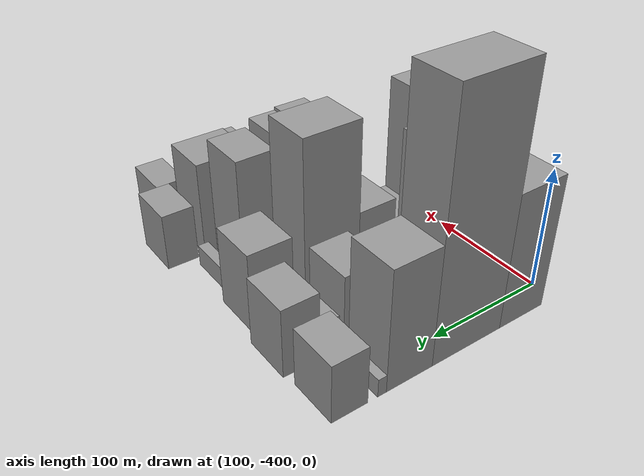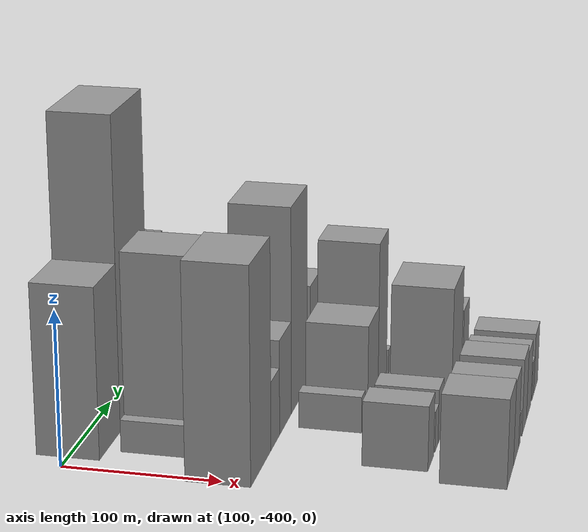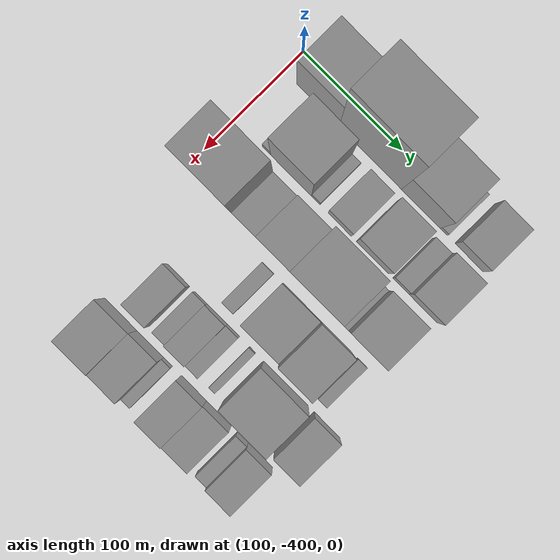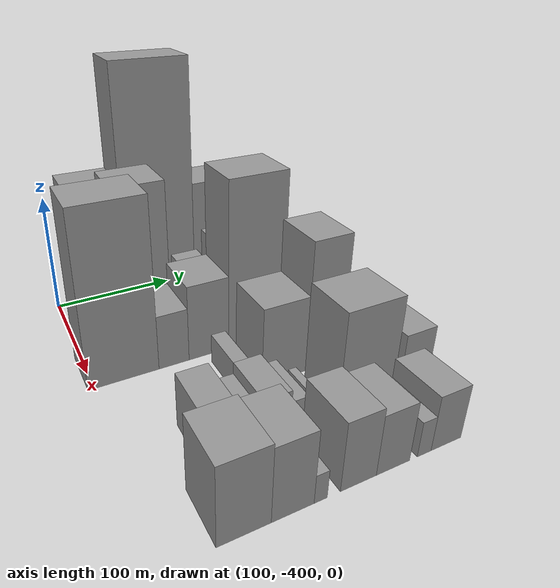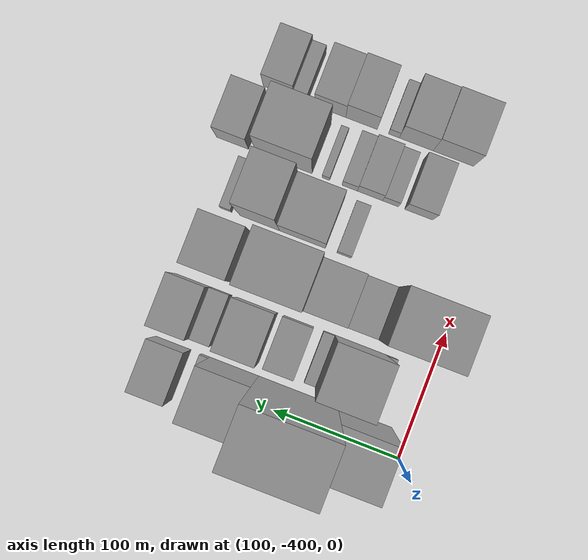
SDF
<sdf version="1.6">
 <world name="default">
  <model name="building_13">
   <static>1</static>
   <pose>100.0000 -365.4669 0 0.000000 0.000000 0.000000</pose>
   <link name="link">
    <pose>0 0 55.50 0 0 0</pose>
    <collision name="collision"><geometry><box><size>40.0000 43.0348 111.0000</size></box></geometry></collision>
    <visual name="visual">
     <cast_shadows>0</cast_shadows>
     <geometry><box><size>40.0000 43.0348 111.0000</size></box></geometry>
     <material>
      <script>
       <uri>model://grey_wall/materials/scripts</uri>
       <uri>model://grey_wall/materials/textures</uri>
       <name>vrc/grey_wall</name>
      </script>
     </material>
    </visual>
   </link>
  </model>
  <model name="building_14">
   <static>1</static>
   <pose>100.0000 -312.3354 0 0.000000 0.000000 0.000000</pose>
   <link name="link">
    <pose>0 0 102.00 0 0 0</pose>
    <collision name="collision"><geometry><box><size>40.0000 63.2282 204.0000</size></box></geometry></collision>
    <visual name="visual">
     <cast_shadows>0</cast_shadows>
     <geometry><box><size>40.0000 63.2282 204.0000</size></box></geometry>
     <material>
      <script>
       <uri>model://grey_wall/materials/scripts</uri>
       <uri>model://grey_wall/materials/textures</uri>
       <name>vrc/grey_wall</name>
      </script>
     </material>
    </visual>
   </link>
  </model>
  <model name="building_15">
   <static>1</static>
   <pose>100.0000 -261.1318 0 0.000000 0.000000 0.000000</pose>
   <link name="link">
    <pose>0 0 49.50 0 0 0</pose>
    <collision name="collision"><geometry><box><size>40.0000 39.1790 99.0000</size></box></geometry></collision>
    <visual name="visual">
     <cast_shadows>0</cast_shadows>
     <geometry><box><size>40.0000 39.1790 99.0000</size></box></geometry>
     <material>
      <script>
       <uri>model://grey_wall/materials/scripts</uri>
       <uri>model://grey_wall/materials/textures</uri>
       <name>vrc/grey_wall</name>
      </script>
     </material>
    </visual>
   </link>
  </model>
  <model name="building_16">
   <static>1</static>
   <pose>100.0000 -238.0258 0 0.000000 0.000000 0.000000</pose>
   <link name="link">
    <pose>0 0 7.50 0 0 0</pose>
    <collision name="collision"><geometry><box><size>40.0000 7.0330 15.0000</size></box></geometry></collision>
    <visual name="visual">
     <cast_shadows>0</cast_shadows>
     <geometry><box><size>40.0000 7.0330 15.0000</size></box></geometry>
     <material>
      <script>
       <uri>model://grey_wall/materials/scripts</uri>
       <uri>model://grey_wall/materials/textures</uri>
       <name>vrc/grey_wall</name>
      </script>
     </material>
    </visual>
   </link>
  </model>
  <model name="building_17">
   <static>1</static>
   <pose>100.0000 -212.2948 0 0.000000 0.000000 0.000000</pose>
   <link name="link">
    <pose>0 0 24.00 0 0 0</pose>
    <collision name="collision"><geometry><box><size>40.0000 28.4289 48.0000</size></box></geometry></collision>
    <visual name="visual">
     <cast_shadows>0</cast_shadows>
     <geometry><box><size>40.0000 28.4289 48.0000</size></box></geometry>
     <material>
      <script>
       <uri>model://grey_wall/materials/scripts</uri>
       <uri>model://grey_wall/materials/textures</uri>
       <name>vrc/grey_wall</name>
      </script>
     </material>
    </visual>
   </link>
  </model>
  <model name="building_61">
   <static>1</static>
   <pose>149.0000 -367.9124 0 0.000000 0.000000 0.000000</pose>
   <link name="link">
    <pose>0 0 10.50 0 0 0</pose>
    <collision name="collision"><geometry><box><size>40.0000 8.4608 21.0000</size></box></geometry></collision>
    <visual name="visual">
     <cast_shadows>0</cast_shadows>
     <geometry><box><size>40.0000 8.4608 21.0000</size></box></geometry>
     <material>
      <script>
       <uri>model://grey_wall/materials/scripts</uri>
       <uri>model://grey_wall/materials/textures</uri>
       <name>vrc/grey_wall</name>
      </script>
     </material>
    </visual>
   </link>
  </model>
  <model name="building_62">
   <static>1</static>
   <pose>149.0000 -343.1044 0 0.000000 0.000000 0.000000</pose>
   <link name="link">
    <pose>0 0 63.00 0 0 0</pose>
    <collision name="collision"><geometry><box><size>40.0000 41.1552 126.0000</size></box></geometry></collision>
    <visual name="visual">
     <cast_shadows>0</cast_shadows>
     <geometry><box><size>40.0000 41.1552 126.0000</size></box></geometry>
     <material>
      <script>
       <uri>model://grey_wall/materials/scripts</uri>
       <uri>model://grey_wall/materials/textures</uri>
       <name>vrc/grey_wall</name>
      </script>
     </material>
    </visual>
   </link>
  </model>
  <model name="building_63">
   <static>1</static>
   <pose>149.0000 -318.1681 0 0.000000 0.000000 0.000000</pose>
   <link name="link">
    <pose>0 0 10.50 0 0 0</pose>
    <collision name="collision"><geometry><box><size>40.0000 8.7174 21.0000</size></box></geometry></collision>
    <visual name="visual">
     <cast_shadows>0</cast_shadows>
     <geometry><box><size>40.0000 8.7174 21.0000</size></box></geometry>
     <material>
      <script>
       <uri>model://grey_wall/materials/scripts</uri>
       <uri>model://grey_wall/materials/textures</uri>
       <name>vrc/grey_wall</name>
      </script>
     </material>
    </visual>
   </link>
  </model>
  <model name="building_64">
   <static>1</static>
   <pose>149.0000 -293.9728 0 0.000000 0.000000 0.000000</pose>
   <link name="link">
    <pose>0 0 21.00 0 0 0</pose>
    <collision name="collision"><geometry><box><size>40.0000 23.6732 42.0000</size></box></geometry></collision>
    <visual name="visual">
     <cast_shadows>0</cast_shadows>
     <geometry><box><size>40.0000 23.6732 42.0000</size></box></geometry>
     <material>
      <script>
       <uri>model://grey_wall/materials/scripts</uri>
       <uri>model://grey_wall/materials/textures</uri>
       <name>vrc/grey_wall</name>
      </script>
     </material>
    </visual>
   </link>
  </model>
  <model name="building_65">
   <static>1</static>
   <pose>149.0000 -260.7673 0 0.000000 0.000000 0.000000</pose>
   <link name="link">
    <pose>0 0 30.00 0 0 0</pose>
    <collision name="collision"><geometry><box><size>40.0000 32.7379 60.0000</size></box></geometry></collision>
    <visual name="visual">
     <cast_shadows>0</cast_shadows>
     <geometry><box><size>40.0000 32.7379 60.0000</size></box></geometry>
     <material>
      <script>
       <uri>model://grey_wall/materials/scripts</uri>
       <uri>model://grey_wall/materials/textures</uri>
       <name>vrc/grey_wall</name>
      </script>
     </material>
    </visual>
   </link>
  </model>
  <model name="building_66">
   <static>1</static>
   <pose>149.0000 -232.5205 0 0.000000 0.000000 0.000000</pose>
   <link name="link">
    <pose>0 0 15.00 0 0 0</pose>
    <collision name="collision"><geometry><box><size>40.0000 15.7556 30.0000</size></box></geometry></collision>
    <visual name="visual">
     <cast_shadows>0</cast_shadows>
     <geometry><box><size>40.0000 15.7556 30.0000</size></box></geometry>
     <material>
      <script>
       <uri>model://grey_wall/materials/scripts</uri>
       <uri>model://grey_wall/materials/textures</uri>
       <name>vrc/grey_wall</name>
      </script>
     </material>
    </visual>
   </link>
  </model>
  <model name="building_67">
   <static>1</static>
   <pose>149.0000 -209.9047 0 0.000000 0.000000 0.000000</pose>
   <link name="link">
    <pose>0 0 28.50 0 0 0</pose>
    <collision name="collision"><geometry><box><size>40.0000 29.4762 57.0000</size></box></geometry></collision>
    <visual name="visual">
     <cast_shadows>0</cast_shadows>
     <geometry><box><size>40.0000 29.4762 57.0000</size></box></geometry>
     <material>
      <script>
       <uri>model://grey_wall/materials/scripts</uri>
       <uri>model://grey_wall/materials/textures</uri>
       <name>vrc/grey_wall</name>
      </script>
     </material>
    </visual>
   </link>
  </model>
  <model name="building_114">
   <static>1</static>
   <pose>198.0000 -377.8753 0 0.000000 0.000000 0.000000</pose>
   <link name="link">
    <pose>0 0 69.00 0 0 0</pose>
    <collision name="collision"><geometry><box><size>40.0000 52.5424 138.0000</size></box></geometry></collision>
    <visual name="visual">
     <cast_shadows>0</cast_shadows>
     <geometry><box><size>40.0000 52.5424 138.0000</size></box></geometry>
     <material>
      <script>
       <uri>model://grey_wall/materials/scripts</uri>
       <uri>model://grey_wall/materials/textures</uri>
       <name>vrc/grey_wall</name>
      </script>
     </material>
    </visual>
   </link>
  </model>
  <model name="building_115">
   <static>1</static>
   <pose>198.0000 -339.6867 0 0.000000 0.000000 0.000000</pose>
   <link name="link">
    <pose>0 0 22.50 0 0 0</pose>
    <collision name="collision"><geometry><box><size>40.0000 23.8348 45.0000</size></box></geometry></collision>
    <visual name="visual">
     <cast_shadows>0</cast_shadows>
     <geometry><box><size>40.0000 23.8348 45.0000</size></box></geometry>
     <material>
      <script>
       <uri>model://grey_wall/materials/scripts</uri>
       <uri>model://grey_wall/materials/textures</uri>
       <name>vrc/grey_wall</name>
      </script>
     </material>
    </visual>
   </link>
  </model>
  <model name="building_116">
   <static>1</static>
   <pose>198.0000 -311.1882 0 0.000000 0.000000 0.000000</pose>
   <link name="link">
    <pose>0 0 31.50 0 0 0</pose>
    <collision name="collision"><geometry><box><size>40.0000 33.1622 63.0000</size></box></geometry></collision>
    <visual name="visual">
     <cast_shadows>0</cast_shadows>
     <geometry><box><size>40.0000 33.1622 63.0000</size></box></geometry>
     <material>
      <script>
       <uri>model://grey_wall/materials/scripts</uri>
       <uri>model://grey_wall/materials/textures</uri>
       <name>vrc/grey_wall</name>
      </script>
     </material>
    </visual>
   </link>
  </model>
  <model name="building_117">
   <static>1</static>
   <pose>198.0000 -270.6538 0 0.000000 0.000000 0.000000</pose>
   <link name="link">
    <pose>0 0 69.00 0 0 0</pose>
    <collision name="collision"><geometry><box><size>40.0000 47.9067 138.0000</size></box></geometry></collision>
    <visual name="visual">
     <cast_shadows>0</cast_shadows>
     <geometry><box><size>40.0000 47.9067 138.0000</size></box></geometry>
     <material>
      <script>
       <uri>model://grey_wall/materials/scripts</uri>
       <uri>model://grey_wall/materials/textures</uri>
       <name>vrc/grey_wall</name>
      </script>
     </material>
    </visual>
   </link>
  </model>
  <model name="building_118">
   <static>1</static>
   <pose>198.0000 -241.7246 0 0.000000 0.000000 0.000000</pose>
   <link name="link">
    <pose>0 0 10.50 0 0 0</pose>
    <collision name="collision"><geometry><box><size>40.0000 9.9516 21.0000</size></box></geometry></collision>
    <visual name="visual">
     <cast_shadows>0</cast_shadows>
     <geometry><box><size>40.0000 9.9516 21.0000</size></box></geometry>
     <material>
      <script>
       <uri>model://grey_wall/materials/scripts</uri>
       <uri>model://grey_wall/materials/textures</uri>
       <name>vrc/grey_wall</name>
      </script>
     </material>
    </visual>
   </link>
  </model>
  <model name="building_119">
   <static>1</static>
   <pose>198.0000 -219.0642 0 0.000000 0.000000 0.000000</pose>
   <link name="link">
    <pose>0 0 33.00 0 0 0</pose>
    <collision name="collision"><geometry><box><size>40.0000 35.3692 66.0000</size></box></geometry></collision>
    <visual name="visual">
     <cast_shadows>0</cast_shadows>
     <geometry><box><size>40.0000 35.3692 66.0000</size></box></geometry>
     <material>
      <script>
       <uri>model://grey_wall/materials/scripts</uri>
       <uri>model://grey_wall/materials/textures</uri>
       <name>vrc/grey_wall</name>
      </script>
     </material>
    </visual>
   </link>
  </model>
  <model name="building_163">
   <static>1</static>
   <pose>247.0000 -307.6725 0 0.000000 0.000000 0.000000</pose>
   <link name="link">
    <pose>0 0 12.00 0 0 0</pose>
    <collision name="collision"><geometry><box><size>40.0000 11.4859 24.0000</size></box></geometry></collision>
    <visual name="visual">
     <cast_shadows>0</cast_shadows>
     <geometry><box><size>40.0000 11.4859 24.0000</size></box></geometry>
     <material>
      <script>
       <uri>model://grey_wall/materials/scripts</uri>
       <uri>model://grey_wall/materials/textures</uri>
       <name>vrc/grey_wall</name>
      </script>
     </material>
    </visual>
   </link>
  </model>
  <model name="building_164">
   <static>1</static>
   <pose>247.0000 -274.5075 0 0.000000 0.000000 0.000000</pose>
   <link name="link">
    <pose>0 0 31.50 0 0 0</pose>
    <collision name="collision"><geometry><box><size>40.0000 36.8439 63.0000</size></box></geometry></collision>
    <visual name="visual">
     <cast_shadows>0</cast_shadows>
     <geometry><box><size>40.0000 36.8439 63.0000</size></box></geometry>
     <material>
      <script>
       <uri>model://grey_wall/materials/scripts</uri>
       <uri>model://grey_wall/materials/textures</uri>
       <name>vrc/grey_wall</name>
      </script>
     </material>
    </visual>
   </link>
  </model>
  <model name="building_165">
   <static>1</static>
   <pose>247.0000 -240.2928 0 0.000000 0.000000 0.000000</pose>
   <link name="link">
    <pose>0 0 52.50 0 0 0</pose>
    <collision name="collision"><geometry><box><size>40.0000 31.5854 105.0000</size></box></geometry></collision>
    <visual name="visual">
     <cast_shadows>0</cast_shadows>
     <geometry><box><size>40.0000 31.5854 105.0000</size></box></geometry>
     <material>
      <script>
       <uri>model://grey_wall/materials/scripts</uri>
       <uri>model://grey_wall/materials/textures</uri>
       <name>vrc/grey_wall</name>
      </script>
     </material>
    </visual>
   </link>
  </model>
  <model name="building_166">
   <static>1</static>
   <pose>247.0000 -213.0566 0 0.000000 0.000000 0.000000</pose>
   <link name="link">
    <pose>0 0 9.00 0 0 0</pose>
    <collision name="collision"><geometry><box><size>40.0000 8.8870 18.0000</size></box></geometry></collision>
    <visual name="visual">
     <cast_shadows>0</cast_shadows>
     <geometry><box><size>40.0000 8.8870 18.0000</size></box></geometry>
     <material>
      <script>
       <uri>model://grey_wall/materials/scripts</uri>
       <uri>model://grey_wall/materials/textures</uri>
       <name>vrc/grey_wall</name>
      </script>
     </material>
    </visual>
   </link>
  </model>
  <model name="building_208">
   <static>1</static>
   <pose>296.0000 -349.2092 0 0.000000 0.000000 0.000000</pose>
   <link name="link">
    <pose>0 0 21.00 0 0 0</pose>
    <collision name="collision"><geometry><box><size>40.0000 22.6958 42.0000</size></box></geometry></collision>
    <visual name="visual">
     <cast_shadows>0</cast_shadows>
     <geometry><box><size>40.0000 22.6958 42.0000</size></box></geometry>
     <material>
      <script>
       <uri>model://grey_wall/materials/scripts</uri>
       <uri>model://grey_wall/materials/textures</uri>
       <name>vrc/grey_wall</name>
      </script>
     </material>
    </visual>
   </link>
  </model>
  <model name="building_209">
   <static>1</static>
   <pose>296.0000 -326.4797 0 0.000000 0.000000 0.000000</pose>
   <link name="link">
    <pose>0 0 13.50 0 0 0</pose>
    <collision name="collision"><geometry><box><size>40.0000 12.7632 27.0000</size></box></geometry></collision>
    <visual name="visual">
     <cast_shadows>0</cast_shadows>
     <geometry><box><size>40.0000 12.7632 27.0000</size></box></geometry>
     <material>
      <script>
       <uri>model://grey_wall/materials/scripts</uri>
       <uri>model://grey_wall/materials/textures</uri>
       <name>vrc/grey_wall</name>
      </script>
     </material>
    </visual>
   </link>
  </model>
  <model name="building_210">
   <static>1</static>
   <pose>296.0000 -309.9657 0 0.000000 0.000000 0.000000</pose>
   <link name="link">
    <pose>0 0 18.00 0 0 0</pose>
    <collision name="collision"><geometry><box><size>40.0000 20.2648 36.0000</size></box></geometry></collision>
    <visual name="visual">
     <cast_shadows>0</cast_shadows>
     <geometry><box><size>40.0000 20.2648 36.0000</size></box></geometry>
     <material>
      <script>
       <uri>model://grey_wall/materials/scripts</uri>
       <uri>model://grey_wall/materials/textures</uri>
       <name>vrc/grey_wall</name>
      </script>
     </material>
    </visual>
   </link>
  </model>
  <model name="building_211">
   <static>1</static>
   <pose>296.0000 -293.6284 0 0.000000 0.000000 0.000000</pose>
   <link name="link">
    <pose>0 0 13.50 0 0 0</pose>
    <collision name="collision"><geometry><box><size>40.0000 12.4097 27.0000</size></box></geometry></collision>
    <visual name="visual">
     <cast_shadows>0</cast_shadows>
     <geometry><box><size>40.0000 12.4097 27.0000</size></box></geometry>
     <material>
      <script>
       <uri>model://grey_wall/materials/scripts</uri>
       <uri>model://grey_wall/materials/textures</uri>
       <name>vrc/grey_wall</name>
      </script>
     </material>
    </visual>
   </link>
  </model>
  <model name="building_212">
   <static>1</static>
   <pose>296.0000 -274.3360 0 0.000000 0.000000 0.000000</pose>
   <link name="link">
    <pose>0 0 7.50 0 0 0</pose>
    <collision name="collision"><geometry><box><size>40.0000 6.1750 15.0000</size></box></geometry></collision>
    <visual name="visual">
     <cast_shadows>0</cast_shadows>
     <geometry><box><size>40.0000 6.1750 15.0000</size></box></geometry>
     <material>
      <script>
       <uri>model://grey_wall/materials/scripts</uri>
       <uri>model://grey_wall/materials/textures</uri>
       <name>vrc/grey_wall</name>
      </script>
     </material>
    </visual>
   </link>
  </model>
  <model name="building_213">
   <static>1</static>
   <pose>296.0000 -240.6600 0 0.000000 0.000000 0.000000</pose>
   <link name="link">
    <pose>0 0 40.50 0 0 0</pose>
    <collision name="collision"><geometry><box><size>40.0000 45.1770 81.0000</size></box></geometry></collision>
    <visual name="visual">
     <cast_shadows>0</cast_shadows>
     <geometry><box><size>40.0000 45.1770 81.0000</size></box></geometry>
     <material>
      <script>
       <uri>model://grey_wall/materials/scripts</uri>
       <uri>model://grey_wall/materials/textures</uri>
       <name>vrc/grey_wall</name>
      </script>
     </material>
    </visual>
   </link>
  </model>
  <model name="building_214">
   <static>1</static>
   <pose>296.0000 -199.1247 0 0.000000 0.000000 0.000000</pose>
   <link name="link">
    <pose>0 0 24.00 0 0 0</pose>
    <collision name="collision"><geometry><box><size>40.0000 25.8935 48.0000</size></box></geometry></collision>
    <visual name="visual">
     <cast_shadows>0</cast_shadows>
     <geometry><box><size>40.0000 25.8935 48.0000</size></box></geometry>
     <material>
      <script>
       <uri>model://grey_wall/materials/scripts</uri>
       <uri>model://grey_wall/materials/textures</uri>
       <name>vrc/grey_wall</name>
      </script>
     </material>
    </visual>
   </link>
  </model>
  <model name="building_257">
   <static>1</static>
   <pose>345.0000 -358.5452 0 0.000000 0.000000 0.000000</pose>
   <link name="link">
    <pose>0 0 28.50 0 0 0</pose>
    <collision name="collision"><geometry><box><size>40.0000 32.6494 57.0000</size></box></geometry></collision>
    <visual name="visual">
     <cast_shadows>0</cast_shadows>
     <geometry><box><size>40.0000 32.6494 57.0000</size></box></geometry>
     <material>
      <script>
       <uri>model://grey_wall/materials/scripts</uri>
       <uri>model://grey_wall/materials/textures</uri>
       <name>vrc/grey_wall</name>
      </script>
     </material>
    </visual>
   </link>
  </model>
  <model name="building_258">
   <static>1</static>
   <pose>345.0000 -328.5628 0 0.000000 0.000000 0.000000</pose>
   <link name="link">
    <pose>0 0 27.00 0 0 0</pose>
    <collision name="collision"><geometry><box><size>40.0000 27.3156 54.0000</size></box></geometry></collision>
    <visual name="visual">
     <cast_shadows>0</cast_shadows>
     <geometry><box><size>40.0000 27.3156 54.0000</size></box></geometry>
     <material>
      <script>
       <uri>model://grey_wall/materials/scripts</uri>
       <uri>model://grey_wall/materials/textures</uri>
       <name>vrc/grey_wall</name>
      </script>
     </material>
    </visual>
   </link>
  </model>
  <model name="building_259">
   <static>1</static>
   <pose>345.0000 -310.5216 0 0.000000 0.000000 0.000000</pose>
   <link name="link">
    <pose>0 0 10.50 0 0 0</pose>
    <collision name="collision"><geometry><box><size>40.0000 8.7667 21.0000</size></box></geometry></collision>
    <visual name="visual">
     <cast_shadows>0</cast_shadows>
     <geometry><box><size>40.0000 8.7667 21.0000</size></box></geometry>
     <material>
      <script>
       <uri>model://grey_wall/materials/scripts</uri>
       <uri>model://grey_wall/materials/textures</uri>
       <name>vrc/grey_wall</name>
      </script>
     </material>
    </visual>
   </link>
  </model>
  <model name="building_260">
   <static>1</static>
   <pose>345.0000 -284.3674 0 0.000000 0.000000 0.000000</pose>
   <link name="link">
    <pose>0 0 25.50 0 0 0</pose>
    <collision name="collision"><geometry><box><size>40.0000 25.5417 51.0000</size></box></geometry></collision>
    <visual name="visual">
     <cast_shadows>0</cast_shadows>
     <geometry><box><size>40.0000 25.5417 51.0000</size></box></geometry>
     <material>
      <script>
       <uri>model://grey_wall/materials/scripts</uri>
       <uri>model://grey_wall/materials/textures</uri>
       <name>vrc/grey_wall</name>
      </script>
     </material>
    </visual>
   </link>
  </model>
  <model name="building_261">
   <static>1</static>
   <pose>345.0000 -259.0300 0 0.000000 0.000000 0.000000</pose>
   <link name="link">
    <pose>0 0 22.50 0 0 0</pose>
    <collision name="collision"><geometry><box><size>40.0000 25.1332 45.0000</size></box></geometry></collision>
    <visual name="visual">
     <cast_shadows>0</cast_shadows>
     <geometry><box><size>40.0000 25.1332 45.0000</size></box></geometry>
     <material>
      <script>
       <uri>model://grey_wall/materials/scripts</uri>
       <uri>model://grey_wall/materials/textures</uri>
       <name>vrc/grey_wall</name>
      </script>
     </material>
    </visual>
   </link>
  </model>
  <model name="building_262">
   <static>1</static>
   <pose>345.0000 -234.9672 0 0.000000 0.000000 0.000000</pose>
   <link name="link">
    <pose>0 0 13.50 0 0 0</pose>
    <collision name="collision"><geometry><box><size>40.0000 10.9924 27.0000</size></box></geometry></collision>
    <visual name="visual">
     <cast_shadows>0</cast_shadows>
     <geometry><box><size>40.0000 10.9924 27.0000</size></box></geometry>
     <material>
      <script>
       <uri>model://grey_wall/materials/scripts</uri>
       <uri>model://grey_wall/materials/textures</uri>
       <name>vrc/grey_wall</name>
      </script>
     </material>
    </visual>
   </link>
  </model>
  <model name="building_263">
   <static>1</static>
   <pose>345.0000 -217.1495 0 0.000000 0.000000 0.000000</pose>
   <link name="link">
    <pose>0 0 21.00 0 0 0</pose>
    <collision name="collision"><geometry><box><size>40.0000 24.6428 42.0000</size></box></geometry></collision>
    <visual name="visual">
     <cast_shadows>0</cast_shadows>
     <geometry><box><size>40.0000 24.6428 42.0000</size></box></geometry>
     <material>
      <script>
       <uri>model://grey_wall/materials/scripts</uri>
       <uri>model://grey_wall/materials/textures</uri>
       <name>vrc/grey_wall</name>
      </script>
     </material>
    </visual>
   </link>
  </model>
 </world>
</sdf>
